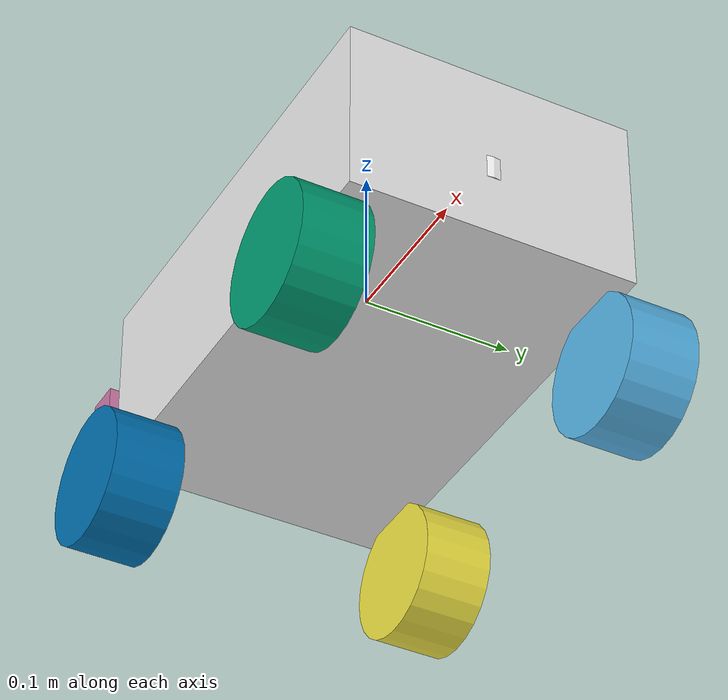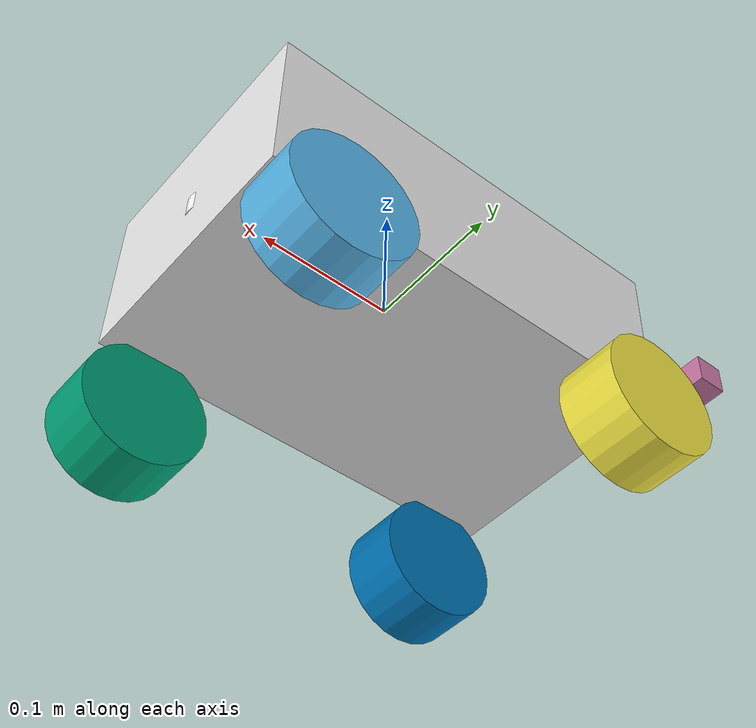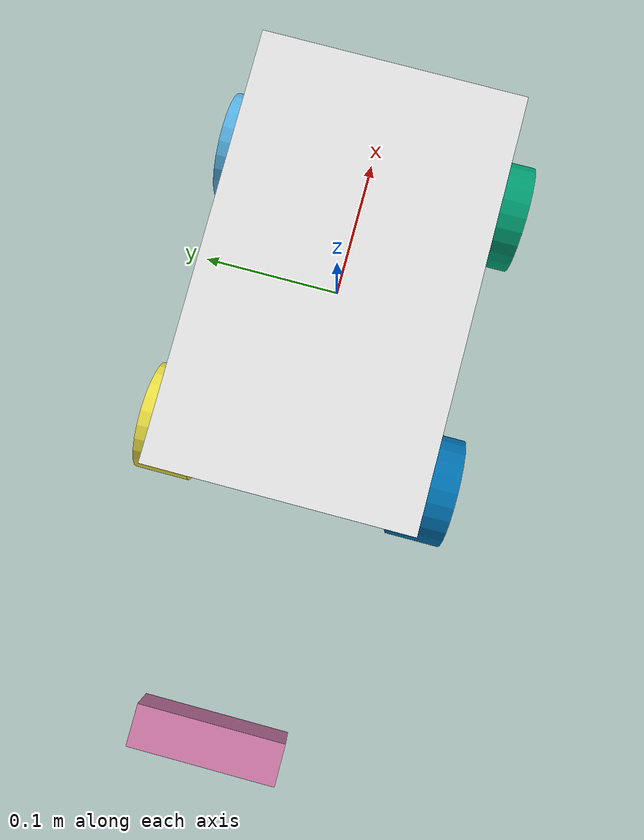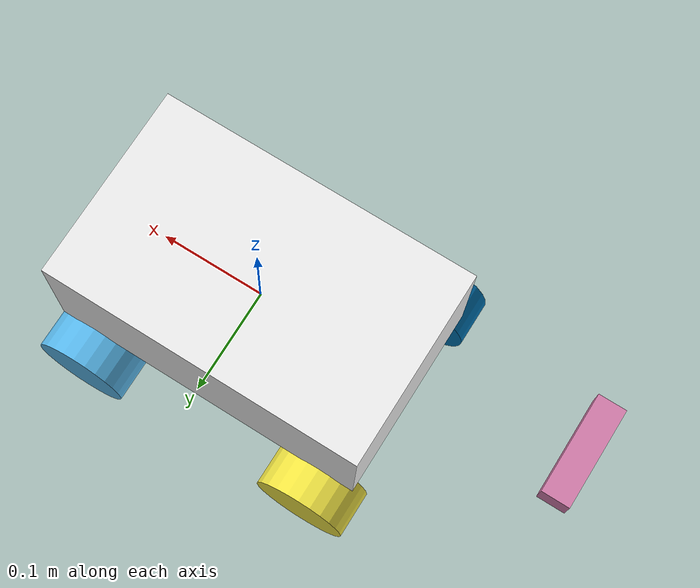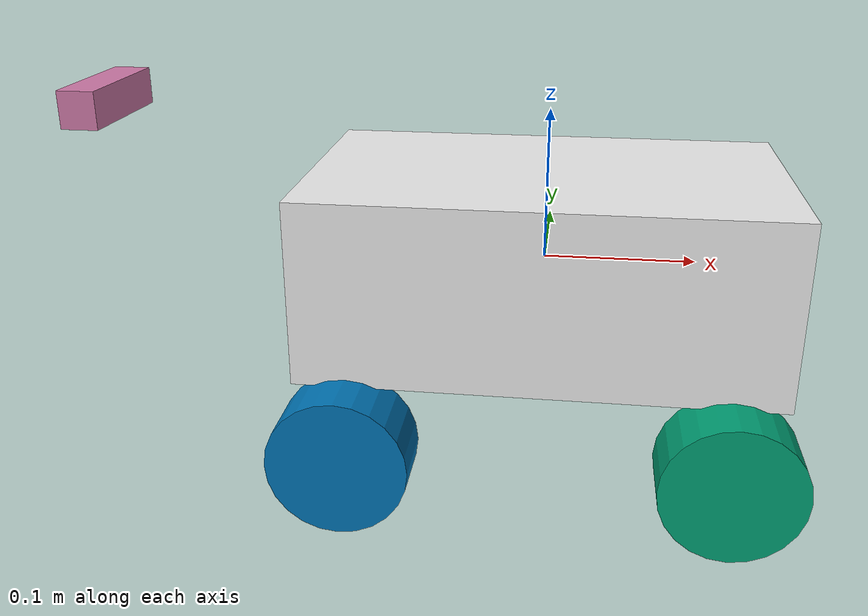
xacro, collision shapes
<?xml version="1.0"?>
<!--
  limo_kinematic.urdf.xacro
  ackermann 플러그인 대신 planar_move 사용. 양쪽 로봇 공용.
  gravity=false, cmd_vel → planar_move → odom 발행.
  LiDAR + 후방 카메라 센서 포함.
-->
<robot name="limo_kinematic" xmlns:xacro="http://www.ros.org/wiki/xacro">

  <xacro:arg name="robot_namespace" default="/"/>

  <!-- 센서 매크로 (LiDAR, Depth Camera) -->
  <xacro:include filename="$(find limo_car)/gazebo/sensor.xacro"/>

  <link name="base_link">
    <visual>
      <origin xyz="0 0 0" rpy="0 0 1.5708"/>
      <geometry>
        <mesh filename="$(find limo_car)/meshes/limo_base.dae" scale="1.2 1.2 1.2"/>
      </geometry>
    </visual>
    <collision>
      <origin xyz="0 0 0" rpy="0 0 0"/>
      <geometry>
        <box size="0.31 0.19 0.12"/>
      </geometry>
    </collision>
    <inertial>
      <mass value="4.34"/>
      <inertia ixx="0.05" ixy="0" ixz="0" iyy="0.05" iyz="0" izz="0.05"/>
    </inertial>
  </link>

  <!-- 바퀴 시각적 표현 (구동 없음, 고정 조인트) -->
  <link name="front_left_wheel_link">
    <visual>
      <geometry>
        <mesh filename="$(find limo_car)/meshes/limo_wheel.dae" scale="1.2 1.2 1.2"/>
      </geometry>
    </visual>
    <collision>
      <origin xyz="0 0.0225 0" rpy="1.5708 0 0"/>
      <geometry><cylinder length="0.045" radius="0.045"/></geometry>
    </collision>
    <inertial><mass value="0.1"/><inertia ixx="1e-4" ixy="0" ixz="0" iyy="1e-4" iyz="0" izz="1e-4"/></inertial>
  </link>
  <joint name="front_left_wheel_joint" type="fixed">
    <parent link="base_link"/><child link="front_left_wheel_link"/>
    <origin xyz="0.12 0.084 -0.10" rpy="0 0 0"/>
  </joint>

  <link name="front_right_wheel_link">
    <visual>
      <geometry>
        <mesh filename="$(find limo_car)/meshes/limo_wheel.dae" scale="1.2 1.2 1.2"/>
      </geometry>
    </visual>
    <collision>
      <origin xyz="0 0.0225 0" rpy="1.5708 0 0"/>
      <geometry><cylinder length="0.045" radius="0.045"/></geometry>
    </collision>
    <inertial><mass value="0.1"/><inertia ixx="1e-4" ixy="0" ixz="0" iyy="1e-4" iyz="0" izz="1e-4"/></inertial>
  </link>
  <joint name="front_right_wheel_joint" type="fixed">
    <parent link="base_link"/><child link="front_right_wheel_link"/>
    <origin xyz="0.12 -0.084 -0.10" rpy="3.14159 0 0"/>
  </joint>

  <link name="rear_left_wheel_link">
    <visual>
      <geometry>
        <mesh filename="$(find limo_car)/meshes/limo_wheel.dae" scale="1.2 1.2 1.2"/>
      </geometry>
    </visual>
    <collision>
      <origin xyz="0 0.0225 0" rpy="1.5708 0 0"/>
      <geometry><cylinder length="0.045" radius="0.045"/></geometry>
    </collision>
    <inertial><mass value="0.1"/><inertia ixx="1e-4" ixy="0" ixz="0" iyy="1e-4" iyz="0" izz="1e-4"/></inertial>
  </link>
  <joint name="rear_left_wheel_joint" type="fixed">
    <parent link="base_link"/><child link="rear_left_wheel_link"/>
    <origin xyz="-0.12 0.084 -0.10" rpy="0 0 0"/>
  </joint>

  <link name="rear_right_wheel_link">
    <visual>
      <geometry>
        <mesh filename="$(find limo_car)/meshes/limo_wheel.dae" scale="1.2 1.2 1.2"/>
      </geometry>
    </visual>
    <collision>
      <origin xyz="0 0.0225 0" rpy="1.5708 0 0"/>
      <geometry><cylinder length="0.045" radius="0.045"/></geometry>
    </collision>
    <inertial><mass value="0.1"/><inertia ixx="1e-4" ixy="0" ixz="0" iyy="1e-4" iyz="0" izz="1e-4"/></inertial>
  </link>
  <joint name="rear_right_wheel_joint" type="fixed">
    <parent link="base_link"/><child link="rear_right_wheel_link"/>
    <origin xyz="-0.12 -0.084 -0.10" rpy="3.14159 0 0"/>
  </joint>

  <!-- LiDAR 센서 -->
  <xacro:gazebo_laser frame_prefix="laser"/>
  <joint name="laser_joint" type="fixed">
    <origin xyz="0.1236 0 -0.01" rpy="0 0 0"/>
    <parent link="base_link"/><child link="laser_link"/>
  </joint>

  <!-- 후방 카메라 -->
  <link name="rear_camera_link">
    <visual><origin xyz="0 0 0" rpy="0 0 0"/>
      <geometry><box size="0.025 0.090 0.025"/></geometry>
    </visual>
    <collision><origin xyz="0 0 0" rpy="0 0 0"/>
      <geometry><box size="0.025 0.090 0.025"/></geometry>
    </collision>
    <inertial><mass value="0.05"/>
      <inertia ixx="1e-6" ixy="0" ixz="0" iyy="1e-6" iyz="0" izz="1e-6"/>
    </inertial>
  </link>
  <joint name="rear_camera_joint" type="fixed">
    <parent link="base_link"/><child link="rear_camera_link"/>
    <origin xyz="-0.30 0 0.10" rpy="0 0 3.14159"/>
  </joint>
  <link name="rear_camera_optical_frame"/>
  <joint name="rear_camera_optical_joint" type="fixed">
    <parent link="rear_camera_link"/><child link="rear_camera_optical_frame"/>
    <origin xyz="0 0 0" rpy="-1.5708 0 -1.5708"/>
  </joint>
  <gazebo reference="rear_camera_link">
    <sensor name="rear_depth_camera" type="depth">
      <always_on>true</always_on><update_rate>15</update_rate><visualize>false</visualize>
      <camera><horizontal_fov>1.0472</horizontal_fov>
        <image><width>320</width><height>240</height><format>R8G8B8</format></image>
        <clip><near>0.05</near><far>3.0</far></clip>
      </camera>
      <plugin name="rear_depth_camera_plugin" filename="libgazebo_ros_camera.so">
        <ros>
          <remapping>image_raw:=rear_camera/depth/image_raw</remapping>
          <remapping>camera_info:=rear_camera/depth/camera_info</remapping>
        </ros>
        <camera_name>rear_camera</camera_name>
        <frame_name>rear_camera_optical_frame</frame_name>
        <min_depth>0.05</min_depth><max_depth>3.0</max_depth>
      </plugin>
    </sensor>
  </gazebo>

  <!-- Gazebo: 중력 비활성화 → 물리 간섭 최소화 -->
  <gazebo reference="base_link">
    <gravity>false</gravity>
    <material>Gazebo/White</material>
  </gazebo>
  <gazebo reference="front_left_wheel_link"><gravity>false</gravity></gazebo>
  <gazebo reference="front_right_wheel_link"><gravity>false</gravity></gazebo>
  <gazebo reference="rear_left_wheel_link"><gravity>false</gravity></gazebo>
  <gazebo reference="rear_right_wheel_link"><gravity>false</gravity></gazebo>

  <!-- planar_move: cmd_vel → 모델 이동 + odom 발행 (ackermann 플러그인 대체) -->
  <gazebo>
    <plugin name="planar_move" filename="libgazebo_ros_planar_move.so">
      <ros>
        <remapping>cmd_vel:=cmd_vel</remapping>
        <remapping>odom:=odom</remapping>
      </ros>
      <command_topic>cmd_vel</command_topic>
      <odometry_topic>odom</odometry_topic>
      <odometry_frame>odom</odometry_frame>
      <robot_base_frame>base_link</robot_base_frame>
      <odometry_rate>20.0</odometry_rate>
      <publish_odom>true</publish_odom>
      <publish_odom_tf>true</publish_odom_tf>
    </plugin>
  </gazebo>

</robot>

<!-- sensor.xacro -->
<!-- Autor: Zhui Li -->
<!--E-Mail: lz554113510@gmail.com -->
<!--Company: Institut für Intermodale Transport- und Logistiksysteme in Technische Universität Braunschweig -->

<robot name="limo_sensor" xmlns:xacro="http://www.ros.org/wiki/xacro">

    <!-- ******************************* Makrofunktion für Laser-Sensor ***************************** -->
    <xacro:macro name="gazebo_laser" params="frame_prefix">
        <link name='${frame_prefix}_link'>
            <inertial>
                <mass value="0.1"/>
                <origin xyz="0.0 0 0" rpy="0 0 0"/>
                <inertia
                        ixx="1e-6" ixy="0" ixz="0"
                        iyy="1e-6" iyz="0"
                        izz="1e-6"
                />
            </inertial>
            <visual name='laser_visual'>
                <origin xyz="0 0 0" rpy="0 0 0"/>
                <geometry>
                    <cylinder radius="0.02" length="0.01"/>
                </geometry>
                <material name='laser_material'>
                    <color rgba="1 1 1 1" />
                    <ambient>0.1 0.1 0.1 1</ambient>
                    <diffuse>0.1 0.1 0.2 1</diffuse>
                    <specular>0 0 0 0</specular>
                    <emissive>0 0 0 1</emissive>
                </material>
            </visual>
            <collision name='laser_collision'>
                <origin xyz="0 0 0" rpy="0 0 0"/>
                <geometry>
                    <cylinder radius="0.032" length="0.016"/>
                </geometry>
            </collision>
        </link>

        <gazebo reference="${frame_prefix}_link">
            <sensor type="ray" name="laser_sensor">
                <visualize>false</visualize>
                <update_rate>8</update_rate>
                <ray>
                    <scan>
                        <horizontal>
                            <samples>720</samples>
                            <resolution>1</resolution>
                            <min_angle>-2.09439504</min_angle> <!-- Einheit in "rad", von Hersteller -->
                            <max_angle>2.09439504</max_angle>
                        </horizontal>
                    </scan>
                    <range>
                        <min>0.1</min>
                        <max>8.0</max>
                        <resolution>0.01</resolution>
                    </range>
                    <!-- um bessere Realität zu simulieren, wird Rauschen auch addiert -->
                    <noise>
                        <type>gaussian</type>
                        <mean>0.0</mean>
                        <stddev>0.01</stddev>
                    </noise>
                </ray>
                <plugin name="gazebo_ros_laser_sensor" filename="libgazebo_ros_ray_sensor.so">
                    <ros>
                        <namespace>/</namespace>
                        <remapping>~/out:=scan</remapping>
                    </ros>
                    <output_type>sensor_msgs/LaserScan</output_type>
                    <min_intensity>150.0</min_intensity>
                </plugin>
            </sensor>
        </gazebo>
    </xacro:macro>

    <!-- ******************************* Makrofunktion für Depth-Camera ***************************** -->
    <xacro:macro name="gazebo_depth_camera" params="frame_prefix">
        <link name='${frame_prefix}_link'>
            <origin xyz="0 0 0" rpy="0 0 0"/>
            <inertial>
                <mass value="0.1"/>
                <origin xyz="0.0 0 0" rpy="0 0 0"/>
                <inertia
                        ixx="1e-6" ixy="0" ixz="0"
                        iyy="1e-6" iyz="0"
                        izz="1e-6"
                />
            </inertial>
            <visual name='depth_camera_visual'>
                <origin xyz="0 0 0" rpy="0 0 0"/>
                <geometry>
                    <box size="0.02 0.06 0.015"/>
                </geometry>
                <material name='depth_camera_material'>
                    <color rgba="0.75 0.75 0.75 1" />
                    <ambient>0.1 0.1 0.1 1</ambient>
                    <diffuse>0.1 0.1 0.2 1</diffuse>
                    <specular>0 0 0 0</specular>
                    <emissive>0 0 0 1</emissive>
                </material>
            </visual>
            <collision name='depth_camera_collision'>
                <origin xyz="0 0 0" rpy="0 0 0"/>
                <geometry>
                    <box size="0.02 0.06 0.015"/>
                </geometry>
            </collision>
        </link>

        <link name="depth_link" />

        <joint name="${frame_prefix}_to_camera_joint" type="fixed">
            <origin xyz="0 0 0" rpy="-1.570796 0 -1.570796 "/>
            <parent link="${frame_prefix}_link"/>
            <child link="depth_link"/>
        </joint>

        <gazebo reference="${frame_prefix}_link">
            <sensor name="sensor_camera" type="depth">
                <pose>0.0 0.0 0.0 0.0 0.0 0.0</pose>
                <always_on>true</always_on>
                <visualize>true</visualize>
                <update_rate>10.0</update_rate>
                <camera name="head">
                    <horizontal_fov>1.3962634</horizontal_fov> <!-- 60*pi/180 -->
                    <!-- normalisieren die Form für Fotos -->
                    <image>
                        <width>640</width>
                        <height>480</height>
                        <format>R8G8B8</format>
                    </image>
                    <clip>
                        <near>0.15</near>
                        <far>8.0</far>
                    </clip>
                </camera>
                <plugin name="gazebo_ros_depth_camera_sensor" filename="libgazebo_ros_camera.so">
                    <ros>
                        <remapping>${frame_prefix}/image_raw:=rgb/image_raw</remapping>
                        <remapping>${frame_prefix}/image_depth:=depth/image_raw</remapping>
                        <remapping>${frame_prefix}/camera_info:=rgb/camera_info</remapping>
                        <remapping>${frame_prefix}/camera_info_depth:=depth/camera_info</remapping>
                        <remapping>${frame_prefix}/points:=depth/points</remapping>
                    </ros>
                    <camera_name>${frame_prefix}</camera_name>
                    <frame_name>${frame_prefix}_frame_optical</frame_name>
                    <hack_baseline>0.07</hack_baseline>
                    <min_depth>0.001</min_depth>
                    <max_depth>300.0</max_depth>
                </plugin>
            </sensor>
        </gazebo>
    </xacro:macro>

    <!-- ******************************* Makrofunktion für IMU ***************************** -->
    <xacro:macro name="gazebo_imu" params="frame_prefix">
        <link name='${frame_prefix}_link'>
            <pose>0 0 0 0 0 0</pose>
            <inertial>
                <mass value="0.01"/>
                <origin xyz="0.0 0 0" rpy="0 0 0"/>
                <inertia
                        ixx="1e-7" ixy="0" ixz="0"
                        iyy="1e-7" iyz="0"
                        izz="1e-7"
                />
            </inertial>
            <visual name='imu_visual'>
                <origin xyz="0 0 0" rpy="0 0 0"/>
                <geometry>
                    <box size="0.001 0.001 0.001"/>
                </geometry>
                <material name='imu_material'>
                    <color rgba="0.75 0.75 0.75 1" />
                    <ambient>0.1 0.1 0.1 1</ambient>
                    <diffuse>0.1 0.1 0.2 1</diffuse>
                    <specular>0 0 0 0</specular>
                    <emissive>0 0 0 1</emissive>
                </material>
            </visual>
            <collision name='imu_collision'>
                <origin xyz="0 0 0" rpy="0 0 0"/>
                <geometry>
                    <box size="0.001 0.001 0.001"/>
                </geometry>
            </collision>
        </link>

        <gazebo reference="${frame_prefix}_link">
            <gravity>true</gravity>
            <sensor name="imu_sensor" type="imu">
                <always_on>true</always_on>
                <update_rate>100</update_rate>
                <visualize>true</visualize>
                <topic>__default_topic__</topic>
                <pose>0 0 0 0 0 0</pose>

                <plugin filename="libgazebo_ros_imu_sensor.so" name="imu_plugin">
                    <topicName>/limo/imu</topicName>
                    <bodyName>${frame_prefix}_link</bodyName>
                    <updateRateHZ>100.0</updateRateHZ>
                    <gaussianNoise>0.001</gaussianNoise>
                    <xyzOffset>0 0 0</xyzOffset>
                    <rpyOffset>0 0 0</rpyOffset>
                    <frameName>${frame_prefix}_link</frameName>
                </plugin>
            </sensor>
        </gazebo>
    </xacro:macro>
</robot>
